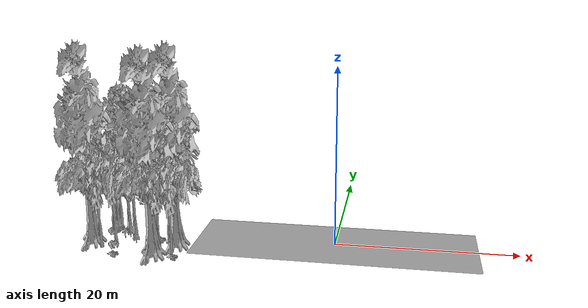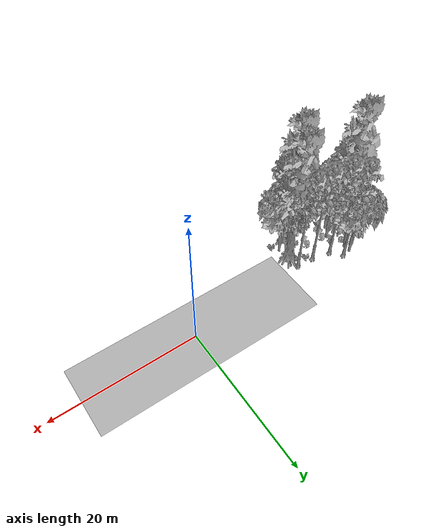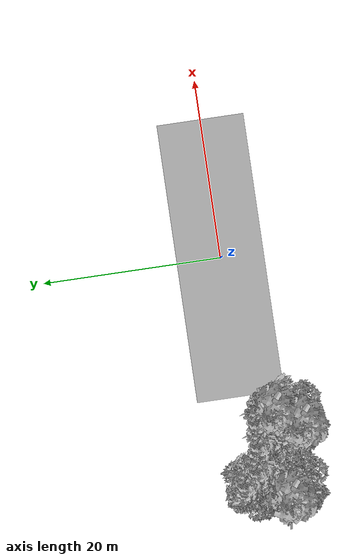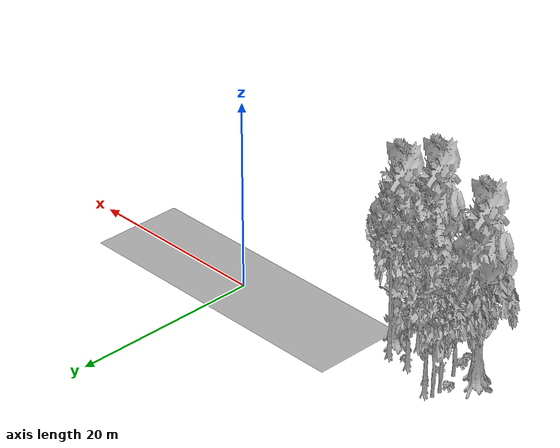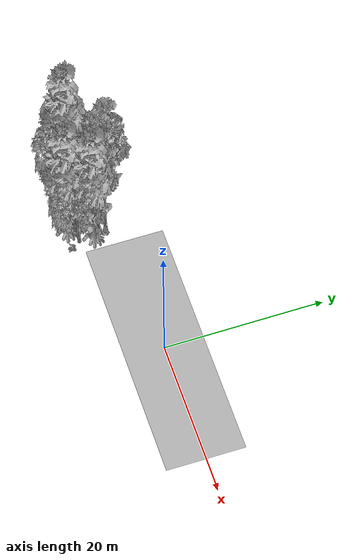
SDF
<sdf version="1.7">
 <world name="default">
  <model name="ground_plane">
   <static>1</static>
   <link name="link">
    <collision name="collision">
     <geometry><plane><normal>0 0 1</normal><size>100 100</size></plane></geometry>
     <surface><contact><ode><min_depth>0.01</min_depth><max_vel>0</max_vel></ode></contact></surface>
    </collision>
    <visual name="grass">
     <cast_shadows>0</cast_shadows>
     <geometry>
      <mesh>
       <scale>0.5814285714285714 0.18142857142857144 0.1</scale>
       <uri>file://grass_plane/meshes/grass_plane.dae</uri>
      </mesh>
     </geometry>
    </visual>
   </link>
  </model>
  <model name="Tree 34">
   <static>1</static>
   <pose>-25.540851216279705 -4.869427088850342 0 1.57079 -0 0</pose>
   <link name="link">
    <collision name="collision">
     <geometry><mesh><scale>3.5 5 3.5</scale><uri>model://tree_2/meshes/tree_2.obj</uri></mesh></geometry>
    </collision>
    <visual name="visual">
     <geometry><mesh><scale>3.5 5 3.5</scale><uri>model://tree_2/meshes/tree_2.obj</uri></mesh></geometry>
    </visual>
   </link>
  </model>
  <model name="Tree 84">
   <static>1</static>
   <pose>-18.97623881656121 -5.170050326431403 0 1.57079 -0 0</pose>
   <link name="link">
    <collision name="collision">
     <geometry><mesh><scale>3.5 5 3.5</scale><uri>model://tree_2/meshes/tree_2.obj</uri></mesh></geometry>
    </collision>
    <visual name="visual">
     <geometry><mesh><scale>3.5 5 3.5</scale><uri>model://tree_2/meshes/tree_2.obj</uri></mesh></geometry>
    </visual>
   </link>
  </model>
  <model name="Tree 96">
   <static>1</static>
   <pose>-18.992230639026328 -4.402931111328595 0 1.57079 -0 0</pose>
   <link name="link">
    <collision name="collision">
     <geometry><mesh><scale>3.5 5 3.5</scale><uri>model://tree_9/meshes/tree_9.obj</uri></mesh></geometry>
    </collision>
    <visual name="visual">
     <geometry><mesh><scale>3.5 5 3.5</scale><uri>model://tree_9/meshes/tree_9.obj</uri></mesh></geometry>
    </visual>
   </link>
  </model>
  <model name="Tree 122">
   <static>1</static>
   <pose>-17.373461008301128 -5.226316383993028 0 1.57079 -0 0</pose>
   <link name="link">
    <collision name="collision">
     <geometry><mesh><scale>3.5 5 3.5</scale><uri>model://tree_2/meshes/tree_2.obj</uri></mesh></geometry>
    </collision>
    <visual name="visual">
     <geometry><mesh><scale>3.5 5 3.5</scale><uri>model://tree_2/meshes/tree_2.obj</uri></mesh></geometry>
    </visual>
   </link>
  </model>
  <model name="Tree 210">
   <static>1</static>
   <pose>-20.35200801487669 -1.5409542828005467 0 1.57079 -0 0</pose>
   <link name="link">
    <collision name="collision">
     <geometry><mesh><scale>3.5 5 3.5</scale><uri>model://tree_9/meshes/tree_9.obj</uri></mesh></geometry>
    </collision>
    <visual name="visual">
     <geometry><mesh><scale>3.5 5 3.5</scale><uri>model://tree_9/meshes/tree_9.obj</uri></mesh></geometry>
    </visual>
   </link>
  </model>
  <model name="Tree 215">
   <static>1</static>
   <pose>-26.976674892555675 -3.709565483659949 0 1.57079 -0 0</pose>
   <link name="link">
    <collision name="collision">
     <geometry><mesh><scale>3.5 5 3.5</scale><uri>model://tree_4/meshes/tree_4.obj</uri></mesh></geometry>
    </collision>
    <visual name="visual">
     <geometry><mesh><scale>3.5 5 3.5</scale><uri>model://tree_4/meshes/tree_4.obj</uri></mesh></geometry>
    </visual>
   </link>
  </model>
  <model name="Tree 231">
   <static>1</static>
   <pose>-23.056994404240676 -1.045765275312318 0 1.57079 -0 0</pose>
   <link name="link">
    <collision name="collision">
     <geometry><mesh><scale>3.5 5 3.5</scale><uri>model://tree_9/meshes/tree_9.obj</uri></mesh></geometry>
    </collision>
    <visual name="visual">
     <geometry><mesh><scale>3.5 5 3.5</scale><uri>model://tree_9/meshes/tree_9.obj</uri></mesh></geometry>
    </visual>
   </link>
  </model>
  <model name="Tree 257">
   <static>1</static>
   <pose>-17.3992729919121 -3.1157225884428073 0 1.57079 -0 0</pose>
   <link name="link">
    <collision name="collision">
     <geometry><mesh><scale>3.5 5 3.5</scale><uri>model://tree_4/meshes/tree_4.obj</uri></mesh></geometry>
    </collision>
    <visual name="visual">
     <geometry><mesh><scale>3.5 5 3.5</scale><uri>model://tree_4/meshes/tree_4.obj</uri></mesh></geometry>
    </visual>
   </link>
  </model>
  <model name="Tree 343">
   <static>1</static>
   <pose>-25.42088684870261 0.39957945224646707 0 1.57079 -0 0</pose>
   <link name="link">
    <collision name="collision">
     <geometry><mesh><scale>3.5 5 3.5</scale><uri>model://tree_2/meshes/tree_2.obj</uri></mesh></geometry>
    </collision>
    <visual name="visual">
     <geometry><mesh><scale>3.5 5 3.5</scale><uri>model://tree_2/meshes/tree_2.obj</uri></mesh></geometry>
    </visual>
   </link>
  </model>
  <model name="Tree 347">
   <static>1</static>
   <pose>-25.38825702141477 -0.6051751254551512 0 1.57079 -0 0</pose>
   <link name="link">
    <collision name="collision">
     <geometry><mesh><scale>3.5 5 3.5</scale><uri>model://tree_2/meshes/tree_2.obj</uri></mesh></geometry>
    </collision>
    <visual name="visual">
     <geometry><mesh><scale>3.5 5 3.5</scale><uri>model://tree_2/meshes/tree_2.obj</uri></mesh></geometry>
    </visual>
   </link>
  </model>
  <model name="Tree 353">
   <static>1</static>
   <pose>-24.357934615447157 0.42132910508207644 0 1.57079 -0 0</pose>
   <link name="link">
    <collision name="collision">
     <geometry><mesh><scale>3.5 5 3.5</scale><uri>model://tree_9/meshes/tree_9.obj</uri></mesh></geometry>
    </collision>
    <visual name="visual">
     <geometry><mesh><scale>3.5 5 3.5</scale><uri>model://tree_9/meshes/tree_9.obj</uri></mesh></geometry>
    </visual>
   </link>
  </model>
  <model name="Tree 382">
   <static>1</static>
   <pose>-17.873906371597336 -1.6852616005037309 0 1.57079 -0 0</pose>
   <link name="link">
    <collision name="collision">
     <geometry><mesh><scale>3.5 5 3.5</scale><uri>model://tree_9/meshes/tree_9.obj</uri></mesh></geometry>
    </collision>
    <visual name="visual">
     <geometry><mesh><scale>3.5 5 3.5</scale><uri>model://tree_9/meshes/tree_9.obj</uri></mesh></geometry>
    </visual>
   </link>
  </model>
  <model name="Tree 418">
   <static>1</static>
   <pose>-24.496912322339448 -3.4025052277249284 0 1.57079 -0 0</pose>
   <link name="link">
    <collision name="collision">
     <geometry><mesh><scale>3.5 5 3.5</scale><uri>model://tree_2/meshes/tree_2.obj</uri></mesh></geometry>
    </collision>
    <visual name="visual">
     <geometry><mesh><scale>3.5 5 3.5</scale><uri>model://tree_2/meshes/tree_2.obj</uri></mesh></geometry>
    </visual>
   </link>
  </model>
  <model name="Tree 425">
   <static>1</static>
   <pose>-19.12814832357289 -5.972811759408215 0 1.57079 -0 0</pose>
   <link name="link">
    <collision name="collision">
     <geometry><mesh><scale>3.5 5 3.5</scale><uri>model://tree_4/meshes/tree_4.obj</uri></mesh></geometry>
    </collision>
    <visual name="visual">
     <geometry><mesh><scale>3.5 5 3.5</scale><uri>model://tree_4/meshes/tree_4.obj</uri></mesh></geometry>
    </visual>
   </link>
  </model>
  <model name="Bush 20">
   <static>1</static>
   <pose>-19.897982520560397 -4.958693871145611 0 1.57079 -0 0</pose>
   <link name="link">
    <collision name="collision">
     <geometry><mesh><scale>2 2 2</scale><uri>model://bush_2/meshes/bush_2.obj</uri></mesh></geometry>
     <surface><contact><collide_without_contact>false</collide_without_contact></contact></surface>
    </collision>
    <visual name="visual">
     <geometry><mesh><scale>2 2 2</scale><uri>model://bush_2/meshes/bush_2.obj</uri></mesh></geometry>
    </visual>
   </link>
  </model>
  <model name="Bush 40">
   <static>1</static>
   <pose>-23.852164380679053 -2.052803692742934 0 1.57079 -0 0</pose>
   <link name="link">
    <collision name="collision">
     <geometry><mesh><scale>2 2 2</scale><uri>model://bush_5/meshes/bush_5.obj</uri></mesh></geometry>
     <surface><contact><collide_without_contact>false</collide_without_contact></contact></surface>
    </collision>
    <visual name="visual">
     <geometry><mesh><scale>2 2 2</scale><uri>model://bush_5/meshes/bush_5.obj</uri></mesh></geometry>
    </visual>
   </link>
  </model>
  <model name="Bush 162">
   <static>1</static>
   <pose>-16.751976876321628 -6.32120202577436 0 1.57079 -0 0</pose>
   <link name="link">
    <collision name="collision">
     <geometry><mesh><scale>2 2 2</scale><uri>model://bush_2/meshes/bush_2.obj</uri></mesh></geometry>
     <surface><contact><collide_without_contact>false</collide_without_contact></contact></surface>
    </collision>
    <visual name="visual">
     <geometry><mesh><scale>2 2 2</scale><uri>model://bush_2/meshes/bush_2.obj</uri></mesh></geometry>
    </visual>
   </link>
  </model>
  <model name="Bush 236">
   <static>1</static>
   <pose>-19.59469267147661 -2.19011980903616 0 1.57079 -0 0</pose>
   <link name="link">
    <collision name="collision">
     <geometry><mesh><scale>2 2 2</scale><uri>model://bush_2/meshes/bush_2.obj</uri></mesh></geometry>
     <surface><contact><collide_without_contact>false</collide_without_contact></contact></surface>
    </collision>
    <visual name="visual">
     <geometry><mesh><scale>2 2 2</scale><uri>model://bush_2/meshes/bush_2.obj</uri></mesh></geometry>
    </visual>
   </link>
  </model>
  <model name="Bush 261">
   <static>1</static>
   <pose>-23.389674073368173 -6.548997724972946 0 1.57079 -0 0</pose>
   <link name="link">
    <collision name="collision">
     <geometry><mesh><scale>2 2 2</scale><uri>model://bush_2/meshes/bush_2.obj</uri></mesh></geometry>
     <surface><contact><collide_without_contact>false</collide_without_contact></contact></surface>
    </collision>
    <visual name="visual">
     <geometry><mesh><scale>2 2 2</scale><uri>model://bush_2/meshes/bush_2.obj</uri></mesh></geometry>
    </visual>
   </link>
  </model>
  <model name="Bush 326">
   <static>1</static>
   <pose>-25.587438476171986 -1.3295296105479633 0 1.57079 -0 0</pose>
   <link name="link">
    <collision name="collision">
     <geometry><mesh><scale>2 2 2</scale><uri>model://bush_3/meshes/bush_3.obj</uri></mesh></geometry>
     <surface><contact><collide_without_contact>false</collide_without_contact></contact></surface>
    </collision>
    <visual name="visual">
     <geometry><mesh><scale>2 2 2</scale><uri>model://bush_3/meshes/bush_3.obj</uri></mesh></geometry>
    </visual>
   </link>
  </model>
  <model name="Bush 327">
   <static>1</static>
   <pose>-19.518956382859127 -6.242813587952295 0 1.57079 -0 0</pose>
   <link name="link">
    <collision name="collision">
     <geometry><mesh><scale>2 2 2</scale><uri>model://bush_3/meshes/bush_3.obj</uri></mesh></geometry>
     <surface><contact><collide_without_contact>false</collide_without_contact></contact></surface>
    </collision>
    <visual name="visual">
     <geometry><mesh><scale>2 2 2</scale><uri>model://bush_3/meshes/bush_3.obj</uri></mesh></geometry>
    </visual>
   </link>
  </model>
  <model name="Bush 331">
   <static>1</static>
   <pose>-23.97609005252641 -4.851031250951982 0 1.57079 -0 0</pose>
   <link name="link">
    <collision name="collision">
     <geometry><mesh><scale>2 2 2</scale><uri>model://bush_3/meshes/bush_3.obj</uri></mesh></geometry>
     <surface><contact><collide_without_contact>false</collide_without_contact></contact></surface>
    </collision>
    <visual name="visual">
     <geometry><mesh><scale>2 2 2</scale><uri>model://bush_3/meshes/bush_3.obj</uri></mesh></geometry>
    </visual>
   </link>
  </model>
 </world>
</sdf>
